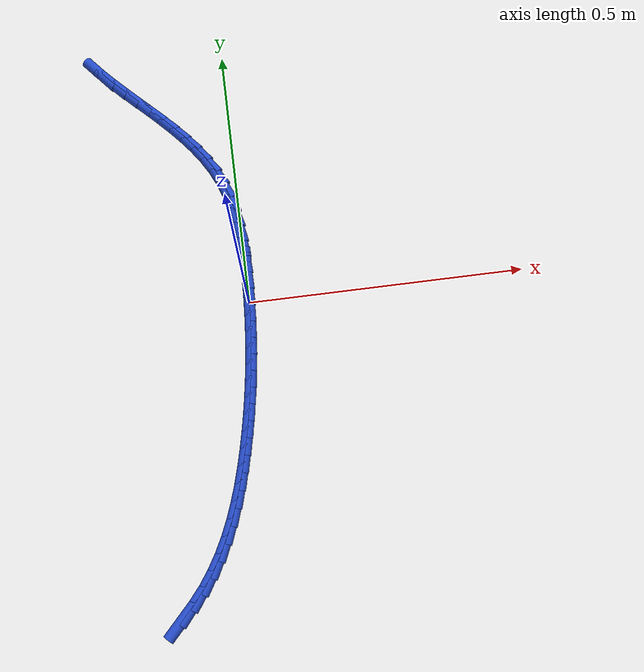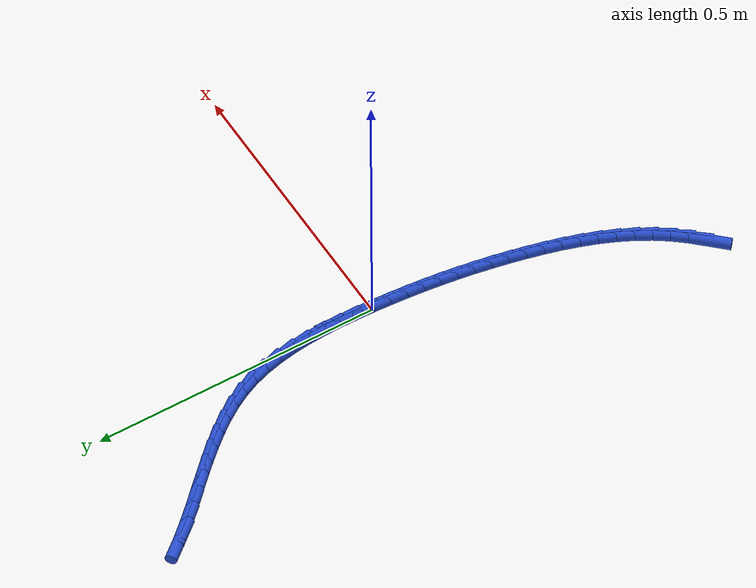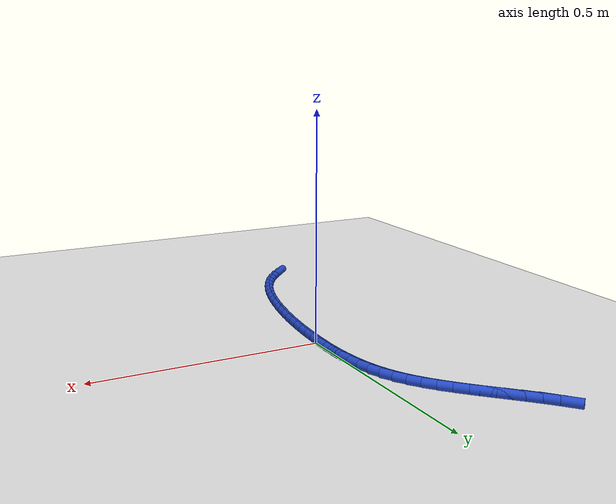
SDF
<sdf version="1.6">
 <world name="default">
  <model name="ground_plane">
   <static>1</static>
   <link name="link">
    <collision name="collision">
     <geometry><plane><normal>0 0 1</normal><size>100 100</size></plane></geometry>
     <surface><friction><ode><mu>100</mu><mu2>50</mu2></ode></friction></surface>
    </collision>
    <visual name="visual">
     <cast_shadows>0</cast_shadows>
     <geometry><plane><normal>0 0 1</normal><size>100 100</size></plane></geometry>
     <material>
      <script><uri>file://media/materials/scripts/gazebo.material</uri><name>Gazebo/WhiteGlow</name></script>
     </material>
    </visual>
   </link>
  </model>
  <model name="line">
   <link name="link_0">
    <pose>-2.8731357570865868e-18 -2.7755575615628914e-17 0.01 0 1.57 1.5362780401128615</pose>
    <collision name="collision">
     <geometry><cylinder><radius>0.01</radius><length>0.08</length></cylinder></geometry>
    </collision>
    <visual name="visual">
     <material>
      <script><name>Gazebo/Blue</name><uri>file://media/materials/scripts/gazebo.material</uri></script>
     </material>
     <geometry><cylinder><radius>0.01</radius><length>0.08</length></cylinder></geometry>
    </visual>
   </link>
   <link name="link_1">
    <pose>0.0010563411514584345 0.030590208027844613 0.01 0 1.57 1.5612468713388525</pose>
    <collision name="collision">
     <geometry><cylinder><radius>0.01</radius><length>0.08</length></cylinder></geometry>
    </collision>
    <visual name="visual">
     <material>
      <script><name>Gazebo/Blue</name><uri>file://media/materials/scripts/gazebo.material</uri></script>
     </material>
     <geometry><cylinder><radius>0.01</radius><length>0.08</length></cylinder></geometry>
    </visual>
   </link>
   <link name="link_2">
    <pose>0.0013500231915128062 0.06134307285780924 0.01 0 1.57 -1.5473924140012787</pose>
    <collision name="collision">
     <geometry><cylinder><radius>0.01</radius><length>0.08</length></cylinder></geometry>
    </collision>
    <visual name="visual">
     <material>
      <script><name>Gazebo/Blue</name><uri>file://media/materials/scripts/gazebo.material</uri></script>
     </material>
     <geometry><cylinder><radius>0.01</radius><length>0.08</length></cylinder></geometry>
    </visual>
   </link>
   <link name="link_3">
    <pose>0.0006310597148863172 0.09205726193674625 0.01 0 1.57 -1.5058623569453697</pose>
    <collision name="collision">
     <geometry><cylinder><radius>0.01</radius><length>0.08</length></cylinder></geometry>
    </collision>
    <visual name="visual">
     <material>
      <script><name>Gazebo/Blue</name><uri>file://media/materials/scripts/gazebo.material</uri></script>
     </material>
     <geometry><cylinder><radius>0.01</radius><length>0.08</length></cylinder></geometry>
    </visual>
   </link>
   <link name="link_4">
    <pose>-0.0013505356836978335 0.12253144271150802 0.01 0 1.57 -1.4549706473578157</pose>
    <collision name="collision">
     <geometry><cylinder><radius>0.01</radius><length>0.08</length></cylinder></geometry>
    </collision>
    <visual name="visual">
     <material>
      <script><name>Gazebo/Blue</name><uri>file://media/materials/scripts/gazebo.material</uri></script>
     </material>
     <geometry><cylinder><radius>0.01</radius><length>0.08</length></cylinder></geometry>
    </visual>
   </link>
   <link name="link_5">
    <pose>-0.004844749409516442 0.15256428262894692 0.01 0 1.57 -1.393804755443454</pose>
    <collision name="collision">
     <geometry><cylinder><radius>0.01</radius><length>0.08</length></cylinder></geometry>
    </collision>
    <visual name="visual">
     <material>
      <script><name>Gazebo/Blue</name><uri>file://media/materials/scripts/gazebo.material</uri></script>
     </material>
     <geometry><cylinder><radius>0.01</radius><length>0.08</length></cylinder></geometry>
    </visual>
   </link>
   <link name="link_6">
    <pose>-0.010101567867846304 0.1819544491359154 0.01 0 1.57 -1.32144173350356</pose>
    <collision name="collision">
     <geometry><cylinder><radius>0.01</radius><length>0.08</length></cylinder></geometry>
    </collision>
    <visual name="visual">
     <material>
      <script><name>Gazebo/Blue</name><uri>file://media/materials/scripts/gazebo.material</uri></script>
     </material>
     <geometry><cylinder><radius>0.01</radius><length>0.08</length></cylinder></geometry>
    </visual>
   </link>
   <link name="link_7">
    <pose>-0.01737097746396422 0.2105006096792657 0.01 0 1.57 -1.2371471010910633</pose>
    <collision name="collision">
     <geometry><cylinder><radius>0.01</radius><length>0.08</length></cylinder></geometry>
    </collision>
    <visual name="visual">
     <material>
      <script><name>Gazebo/Blue</name><uri>file://media/materials/scripts/gazebo.material</uri></script>
     </material>
     <geometry><cylinder><radius>0.01</radius><length>0.08</length></cylinder></geometry>
    </visual>
   </link>
   <link name="link_8">
    <pose>-0.02690296460314699 0.23800143170585047 0.01 0 1.57 -1.141547642899739</pose>
    <collision name="collision">
     <geometry><cylinder><radius>0.01</radius><length>0.08</length></cylinder></geometry>
    </collision>
    <visual name="visual">
     <material>
      <script><name>Gazebo/Blue</name><uri>file://media/materials/scripts/gazebo.material</uri></script>
     </material>
     <geometry><cylinder><radius>0.01</radius><length>0.08</length></cylinder></geometry>
    </visual>
   </link>
   <link name="link_9">
    <pose>-0.038926152110613454 0.2642694510574671 0.01 0 1.57 -1.0485164768581037</pose>
    <collision name="collision">
     <geometry><cylinder><radius>0.01</radius><length>0.08</length></cylinder></geometry>
    </collision>
    <visual name="visual">
     <material>
      <script><name>Gazebo/Blue</name><uri>file://media/materials/scripts/gazebo.material</uri></script>
     </material>
     <geometry><cylinder><radius>0.01</radius><length>0.08</length></cylinder></geometry>
    </visual>
   </link>
   <link name="link_10">
    <pose>-0.05334825386540836 0.2893255250274168 0.01 0 1.57 -0.9695458577225404</pose>
    <collision name="collision">
     <geometry><cylinder><radius>0.01</radius><length>0.08</length></cylinder></geometry>
    </collision>
    <visual name="visual">
     <material>
      <script><name>Gazebo/Blue</name><uri>file://media/materials/scripts/gazebo.material</uri></script>
     </material>
     <geometry><cylinder><radius>0.01</radius><length>0.08</length></cylinder></geometry>
    </visual>
   </link>
   <link name="link_11">
    <pose>-0.06982930833393573 0.31335129203423384 0.01 0 1.57 -0.9053663184407817</pose>
    <collision name="collision">
     <geometry><cylinder><radius>0.01</radius><length>0.08</length></cylinder></geometry>
    </collision>
    <visual name="visual">
     <material>
      <script><name>Gazebo/Blue</name><uri>file://media/materials/scripts/gazebo.material</uri></script>
     </material>
     <geometry><cylinder><radius>0.01</radius><length>0.08</length></cylinder></geometry>
    </visual>
   </link>
   <link name="link_12">
    <pose>-0.08802294588776693 0.33653255037928725 0.01 0 1.57 -0.8556844754677903</pose>
    <collision name="collision">
     <geometry><cylinder><radius>0.01</radius><length>0.08</length></cylinder></geometry>
    </collision>
    <visual name="visual">
     <material>
      <script><name>Gazebo/Blue</name><uri>file://media/materials/scripts/gazebo.material</uri></script>
     </material>
     <geometry><cylinder><radius>0.01</radius><length>0.08</length></cylinder></geometry>
    </visual>
   </link>
   <link name="link_13">
    <pose>-0.10758279689847325 0.3590550983639467 0.01 0 1.57 -0.8198664247431035</pose>
    <collision name="collision">
     <geometry><cylinder><radius>0.01</radius><length>0.08</length></cylinder></geometry>
    </collision>
    <visual name="visual">
     <material>
      <script><name>Gazebo/Blue</name><uri>file://media/materials/scripts/gazebo.material</uri></script>
     </material>
     <geometry><cylinder><radius>0.01</radius><length>0.08</length></cylinder></geometry>
    </visual>
   </link>
   <link name="link_14">
    <pose>-0.12816249173762606 0.38110473428958136 0.01 0 1.57 -0.7972387106667777</pose>
    <collision name="collision">
     <geometry><cylinder><radius>0.01</radius><length>0.08</length></cylinder></geometry>
    </collision>
    <visual name="visual">
     <material>
      <script><name>Gazebo/Blue</name><uri>file://media/materials/scripts/gazebo.material</uri></script>
     </material>
     <geometry><cylinder><radius>0.01</radius><length>0.08</length></cylinder></geometry>
    </visual>
   </link>
   <link name="link_15">
    <pose>-0.14941566077679663 0.40286725645756055 0.01 0 1.57 -0.7872698154737598</pose>
    <collision name="collision">
     <geometry><cylinder><radius>0.01</radius><length>0.08</length></cylinder></geometry>
    </collision>
    <visual name="visual">
     <material>
      <script><name>Gazebo/Blue</name><uri>file://media/materials/scripts/gazebo.material</uri></script>
     </material>
     <geometry><cylinder><radius>0.01</radius><length>0.08</length></cylinder></geometry>
    </visual>
   </link>
   <link name="link_16">
    <pose>-0.17099593438755648 0.4245284631692538 0.01 0 1.57 -0.7896626280506444</pose>
    <collision name="collision">
     <geometry><cylinder><radius>0.01</radius><length>0.08</length></cylinder></geometry>
    </collision>
    <visual name="visual">
     <material>
      <script><name>Gazebo/Blue</name><uri>file://media/materials/scripts/gazebo.material</uri></script>
     </material>
     <geometry><cylinder><radius>0.01</radius><length>0.08</length></cylinder></geometry>
    </visual>
   </link>
   <link name="link_17">
    <pose>-0.19255694294147682 0.44627415272603044 0.01 0 1.57 -0.8043861911847339</pose>
    <collision name="collision">
     <geometry><cylinder><radius>0.01</radius><length>0.08</length></cylinder></geometry>
    </collision>
    <visual name="visual">
     <material>
      <script><name>Gazebo/Blue</name><uri>file://media/materials/scripts/gazebo.material</uri></script>
     </material>
     <geometry><cylinder><radius>0.01</radius><length>0.08</length></cylinder></geometry>
    </visual>
   </link>
   <link name="link_18">
    <pose>-0.21375231681012902 0.4682901234292598 0.01 0 1.57 -0.8316615131173729</pose>
    <collision name="collision">
     <geometry><cylinder><radius>0.01</radius><length>0.08</length></cylinder></geometry>
    </collision>
    <visual name="visual">
     <material>
      <script><name>Gazebo/Blue</name><uri>file://media/materials/scripts/gazebo.material</uri></script>
     </material>
     <geometry><cylinder><radius>0.01</radius><length>0.08</length></cylinder></geometry>
    </visual>
   </link>
   <link name="link_19">
    <pose>-0.23423568636508435 0.4907621735803111 0.01 0 1.57 -0.8719007435504268</pose>
    <collision name="collision">
     <geometry><cylinder><radius>0.01</radius><length>0.08</length></cylinder></geometry>
    </collision>
    <visual name="visual">
     <material>
      <script><name>Gazebo/Blue</name><uri>file://media/materials/scripts/gazebo.material</uri></script>
     </material>
     <geometry><cylinder><radius>0.01</radius><length>0.08</length></cylinder></geometry>
    </visual>
   </link>
   <link name="link_231">
    <pose>-0.16612730995189545 -0.5308035486057233 0.01 0 1.57 0.8159855887244412</pose>
    <collision name="collision">
     <geometry><cylinder><radius>0.01</radius><length>0.08</length></cylinder></geometry>
    </collision>
    <visual name="visual">
     <material>
      <script><name>Gazebo/Blue</name><uri>file://media/materials/scripts/gazebo.material</uri></script>
     </material>
     <geometry><cylinder><radius>0.01</radius><length>0.08</length></cylinder></geometry>
    </visual>
   </link>
   <link name="link_232">
    <pose>-0.14584443728132776 -0.5092403118645328 0.01 0 1.57 0.8847962148019657</pose>
    <collision name="collision">
     <geometry><cylinder><radius>0.01</radius><length>0.08</length></cylinder></geometry>
    </collision>
    <visual name="visual">
     <material>
      <script><name>Gazebo/Blue</name><uri>file://media/materials/scripts/gazebo.material</uri></script>
     </material>
     <geometry><cylinder><radius>0.01</radius><length>0.08</length></cylinder></geometry>
    </visual>
   </link>
   <link name="link_233">
    <pose>-0.12717488356630272 -0.48643456308848826 0.01 0 1.57 0.963813546480197</pose>
    <collision name="collision">
     <geometry><cylinder><radius>0.01</radius><length>0.08</length></cylinder></geometry>
    </collision>
    <visual name="visual">
     <material>
      <script><name>Gazebo/Blue</name><uri>file://media/materials/scripts/gazebo.material</uri></script>
     </material>
     <geometry><cylinder><radius>0.01</radius><length>0.08</length></cylinder></geometry>
    </visual>
   </link>
   <link name="link_234">
    <pose>-0.11036117516403636 -0.46222257060296323 0.01 0 1.57 1.0400719787508363</pose>
    <collision name="collision">
     <geometry><cylinder><radius>0.01</radius><length>0.08</length></cylinder></geometry>
    </collision>
    <visual name="visual">
     <material>
      <script><name>Gazebo/Blue</name><uri>file://media/materials/scripts/gazebo.material</uri></script>
     </material>
     <geometry><cylinder><radius>0.01</radius><length>0.08</length></cylinder></geometry>
    </visual>
   </link>
   <link name="link_235">
    <pose>-0.09537390945669666 -0.4366858355635401 0.01 0 1.57 1.1078657915788002</pose>
    <collision name="collision">
     <geometry><cylinder><radius>0.01</radius><length>0.08</length></cylinder></geometry>
    </collision>
    <visual name="visual">
     <material>
      <script><name>Gazebo/Blue</name><uri>file://media/materials/scripts/gazebo.material</uri></script>
     </material>
     <geometry><cylinder><radius>0.01</radius><length>0.08</length></cylinder></geometry>
    </visual>
   </link>
   <link name="link_236">
    <pose>-0.08206247389763999 -0.41001516948482697 0.01 0 1.57 1.167358355654117</pose>
    <collision name="collision">
     <geometry><cylinder><radius>0.01</radius><length>0.08</length></cylinder></geometry>
    </collision>
    <visual name="visual">
     <material>
      <script><name>Gazebo/Blue</name><uri>file://media/materials/scripts/gazebo.material</uri></script>
     </material>
     <geometry><cylinder><radius>0.01</radius><length>0.08</length></cylinder></geometry>
    </visual>
   </link>
   <link name="link_237">
    <pose>-0.07027569839595615 -0.3824018866897784 0.01 0 1.57 1.2189495281128622</pose>
    <collision name="collision">
     <geometry><cylinder><radius>0.01</radius><length>0.08</length></cylinder></geometry>
    </collision>
    <visual name="visual">
     <material>
      <script><name>Gazebo/Blue</name><uri>file://media/materials/scripts/gazebo.material</uri></script>
     </material>
     <geometry><cylinder><radius>0.01</radius><length>0.08</length></cylinder></geometry>
    </visual>
   </link>
   <link name="link_238">
    <pose>-0.059862412860734966 -0.3540373015013494 0.01 0 1.57 1.2631299836623338</pose>
    <collision name="collision">
     <geometry><cylinder><radius>0.01</radius><length>0.08</length></cylinder></geometry>
    </collision>
    <visual name="visual">
     <material>
      <script><name>Gazebo/Blue</name><uri>file://media/materials/scripts/gazebo.material</uri></script>
     </material>
     <geometry><cylinder><radius>0.01</radius><length>0.08</length></cylinder></geometry>
    </visual>
   </link>
   <link name="link_239">
    <pose>-0.0506714472010662 -0.32511272824249476 0.01 0 1.57 1.3003945750677006</pose>
    <collision name="collision">
     <geometry><cylinder><radius>0.01</radius><length>0.08</length></cylinder></geometry>
    </collision>
    <visual name="visual">
     <material>
      <script><name>Gazebo/Blue</name><uri>file://media/materials/scripts/gazebo.material</uri></script>
     </material>
     <geometry><cylinder><radius>0.01</radius><length>0.08</length></cylinder></geometry>
    </visual>
   </link>
   <link name="link_240">
    <pose>-0.0425516313260399 -0.29581948123617036 0.01 0 1.57 1.331184174086406</pose>
    <collision name="collision">
     <geometry><cylinder><radius>0.01</radius><length>0.08</length></cylinder></geometry>
    </collision>
    <visual name="visual">
     <material>
      <script><name>Gazebo/Blue</name><uri>file://media/materials/scripts/gazebo.material</uri></script>
     </material>
     <geometry><cylinder><radius>0.01</radius><length>0.08</length></cylinder></geometry>
    </visual>
   </link>
   <link name="link_241">
    <pose>-0.035351795144745415 -0.2663488748053292 0.01 0 1.57 1.355912162125475</pose>
    <collision name="collision">
     <geometry><cylinder><radius>0.01</radius><length>0.08</length></cylinder></geometry>
    </collision>
    <visual name="visual">
     <material>
      <script><name>Gazebo/Blue</name><uri>file://media/materials/scripts/gazebo.material</uri></script>
     </material>
     <geometry><cylinder><radius>0.01</radius><length>0.08</length></cylinder></geometry>
    </visual>
   </link>
   <link name="link_242">
    <pose>-0.028922181159979632 -0.2368895375225854 0.01 0 1.57 1.3772709841683177</pose>
    <collision name="collision">
     <geometry><cylinder><radius>0.01</radius><length>0.08</length></cylinder></geometry>
    </collision>
    <visual name="visual">
     <material>
      <script><name>Gazebo/Blue</name><uri>file://media/materials/scripts/gazebo.material</uri></script>
     </material>
     <geometry><cylinder><radius>0.01</radius><length>0.08</length></cylinder></geometry>
    </visual>
   </link>
   <link name="link_243">
    <pose>-0.023167629182847396 -0.20752629264219727 0.01 0 1.57 1.398429030638123</pose>
    <collision name="collision">
     <geometry><cylinder><radius>0.01</radius><length>0.08</length></cylinder></geometry>
    </collision>
    <visual name="visual">
     <material>
      <script><name>Gazebo/Blue</name><uri>file://media/materials/scripts/gazebo.material</uri></script>
     </material>
     <geometry><cylinder><radius>0.01</radius><length>0.08</length></cylinder></geometry>
    </visual>
   </link>
   <link name="link_244">
    <pose>-0.01806371985611815 -0.17820946457994208 0.01 0 1.57 1.419452364272828</pose>
    <collision name="collision">
     <geometry><cylinder><radius>0.01</radius><length>0.08</length></cylinder></geometry>
    </collision>
    <visual name="visual">
     <material>
      <script><name>Gazebo/Blue</name><uri>file://media/materials/scripts/gazebo.material</uri></script>
     </material>
     <geometry><cylinder><radius>0.01</radius><length>0.08</length></cylinder></geometry>
    </visual>
   </link>
   <link name="link_245">
    <pose>-0.013590743187752535 -0.14888042388247708 0.01 0 1.57 1.4401913336143595</pose>
    <collision name="collision">
     <geometry><cylinder><radius>0.01</radius><length>0.08</length></cylinder></geometry>
    </collision>
    <visual name="visual">
     <material>
      <script><name>Gazebo/Blue</name><uri>file://media/materials/scripts/gazebo.material</uri></script>
     </material>
     <geometry><cylinder><radius>0.01</radius><length>0.08</length></cylinder></geometry>
    </visual>
   </link>
   <link name="link_246">
    <pose>-0.00972898918571114 -0.11948054109645916 0.01 0 1.57 1.460500332151661</pose>
    <collision name="collision">
     <geometry><cylinder><radius>0.01</radius><length>0.08</length></cylinder></geometry>
    </collision>
    <visual name="visual">
     <material>
      <script><name>Gazebo/Blue</name><uri>file://media/materials/scripts/gazebo.material</uri></script>
     </material>
     <geometry><cylinder><radius>0.01</radius><length>0.08</length></cylinder></geometry>
    </visual>
   </link>
   <link name="link_247">
    <pose>-0.006458747857954577 -0.0899511867685454 0.01 0 1.57 1.4802415100617483</pose>
    <collision name="collision">
     <geometry><cylinder><radius>0.01</radius><length>0.08</length></cylinder></geometry>
    </collision>
    <visual name="visual">
     <material>
      <script><name>Gazebo/Blue</name><uri>file://media/materials/scripts/gazebo.material</uri></script>
     </material>
     <geometry><cylinder><radius>0.01</radius><length>0.08</length></cylinder></geometry>
    </visual>
   </link>
   <link name="link_248">
    <pose>-0.003760309212443463 -0.06023373144539292 0.01 0 1.57 1.4992880826523538</pose>
    <collision name="collision">
     <geometry><cylinder><radius>0.01</radius><length>0.08</length></cylinder></geometry>
    </collision>
    <visual name="visual">
     <material>
      <script><name>Gazebo/Blue</name><uri>file://media/materials/scripts/gazebo.material</uri></script>
     </material>
     <geometry><cylinder><radius>0.01</radius><length>0.08</length></cylinder></geometry>
    </visual>
   </link>
   <link name="link_249">
    <pose>-0.0016139632571383982 -0.030269545673658724 0.01 0 1.57 1.517527064549898</pose>
    <collision name="collision">
     <geometry><cylinder><radius>0.01</radius><length>0.08</length></cylinder></geometry>
    </collision>
    <visual name="visual">
     <material>
      <script><name>Gazebo/Blue</name><uri>file://media/materials/scripts/gazebo.material</uri></script>
     </material>
     <geometry><cylinder><radius>0.01</radius><length>0.08</length></cylinder></geometry>
    </visual>
   </link>
   <link name="link_250">
    <pose>7.26415455565288e-18 1.1796119636642288e-16 0.01 0 1.57 1.5348613141439678</pose>
    <collision name="collision">
     <geometry><cylinder><radius>0.01</radius><length>0.08</length></cylinder></geometry>
    </collision>
    <visual name="visual">
     <material>
      <script><name>Gazebo/Blue</name><uri>file://media/materials/scripts/gazebo.material</uri></script>
     </material>
     <geometry><cylinder><radius>0.01</radius><length>0.08</length></cylinder></geometry>
    </visual>
   </link>
   <link name="link_251">
    <pose>0.0011012905510111423 0.030633535028926545 0.01 0 1.57 1.5512108348184066</pose>
    <collision name="collision">
     <geometry><cylinder><radius>0.01</radius><length>0.08</length></cylinder></geometry>
    </collision>
    <visual name="visual">
     <material>
      <script><name>Gazebo/Blue</name><uri>file://media/materials/scripts/gazebo.material</uri></script>
     </material>
     <geometry><cylinder><radius>0.01</radius><length>0.08</length></cylinder></geometry>
    </visual>
   </link>
   <link name="link_252">
    <pose>0.0017096183879344003 0.06168968886646353 0.01 0 1.57 1.5430902231245025</pose>
    <collision name="collision">
     <geometry><cylinder><radius>0.01</radius><length>0.08</length></cylinder></geometry>
    </collision>
    <visual name="visual">
     <material>
      <script><name>Gazebo/Blue</name><uri>file://media/materials/scripts/gazebo.material</uri></script>
     </material>
     <geometry><cylinder><radius>0.01</radius><length>0.08</length></cylinder></geometry>
    </visual>
   </link>
  </model>
 </world>
</sdf>
